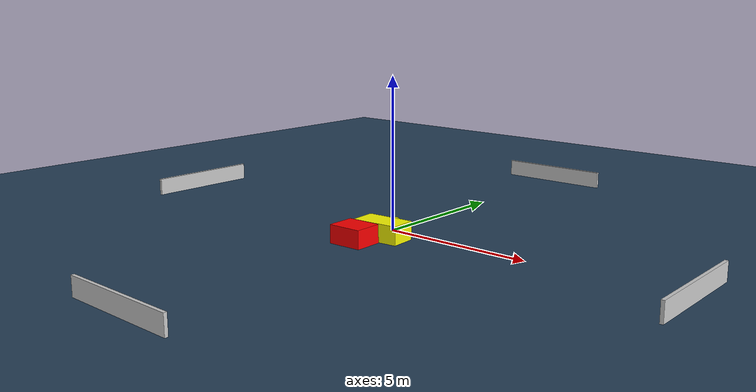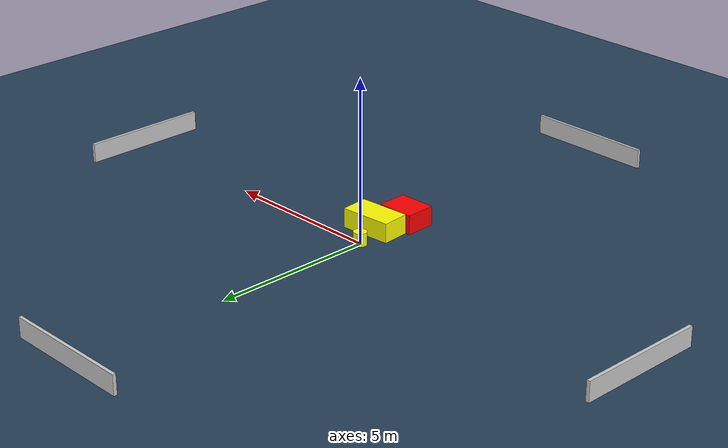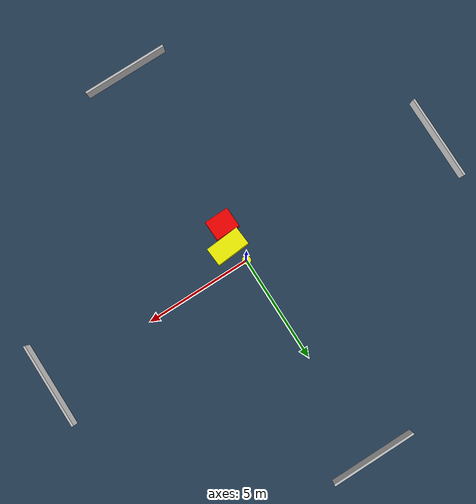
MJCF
<?xml version="1.0" ?>
<mujoco model="generated_environment">
  <option timestep="0.01" integrator="RK4" cone="elliptic"/>
  <default>
    <geom density="1"/>
  </default>
  <asset>
    <texture builtin="gradient" height="3072" name="skybox" rgb1="0.3 0.5 0.7" rgb2="0 0 0" type="skybox" width="512"/>
    <texture builtin="checker" height="300" name="groundplane" rgb1="0.2 0.3 0.4" rgb2="0.1 0.2 0.3" type="2d" width="300"/>
    <material name="groundplane" reflectance="0.2" texrepeat="5 5" texture="groundplane"/>
  </asset>
  <worldbody>
    <light dir="0 0 -1" directional="true" pos="0 0 1.5"/>
    <geom condim="3" friction="0.5 0.005 0.001" material="groundplane" name="floor" pos="0 0 0" size="0 0 0.05" type="plane"/>
    <body name="walls">
      <geom name="wall_1" condim="4" pos="-10.0 0.0 0.3" rgba="0.800000011920929 0.800000011920929 0.800000011920929 1.0" size="0.05 2.0 0.3" type="box"/>
      <geom name="wall_2" condim="4" pos="10.0 0.0 0.3" rgba="0.800000011920929 0.800000011920929 0.800000011920929 1.0" size="0.05 2.0 0.3" type="box"/>
      <geom name="wall_3" condim="4" pos="0.0 -10.0 0.3" rgba="0.800000011920929 0.800000011920929 0.800000011920929 1.0" size="2.0 0.05 0.3" type="box"/>
      <geom name="wall_4" condim="4" pos="0.0 10.0 0.3" rgba="0.800000011920929 0.800000011920929 0.800000011920929 1.0" size="2.0 0.05 0.3" type="box"/>
    </body>
    <body name="robot">
      <joint name="joint_x" type="slide" pos="0 0 0" axis="1 0 0"/>
      <joint name="joint_y" type="slide" pos="0 0 0" axis="0 1 0"/>
      <geom name="robot" type="cylinder" pos="0.0 0.0 0.2" size="0.2 0.2 0.0" mass="5.0" friction="1.0 0.005 0.0001" condim="4" rgba="1.0 1.0 0.0 1.0"/>
    </body>
    <body name="obstacle_1_movable">
      <geom name="obstacle_1_movable" condim="4" pos="0.3734157013632039 -0.9295057491115633 0.3" euler="0 0 4.553735676956645" friction="0.0 0.005 0.001" rgba="1.0 1.0 0.0 1.0" size="0.7997145967733199 0.4323690566976541 0.3" type="box" mass="0.1"/>
      <joint type="free"/>
    </body>
    <body name="obstacle_2_static">
      <geom name="obstacle_2_static" condim="4" pos="0.057720464915243345 -1.879199889400144 0.3" euler="0 0 91.80985783367292" friction="0.0 0.005 0.001" rgba="1.0 0.0 0.0 1.0" size="0.4686800840788246 0.5720715473950466 0.3" type="box"/>
    </body>
  </worldbody>
  <actuator>
    <motor name="actuator_x" joint="joint_x" gear="1" ctrlrange="-1 1"/>
    <motor name="actuator_y" joint="joint_y" gear="1" ctrlrange="-1 1"/>
  </actuator>
</mujoco>
